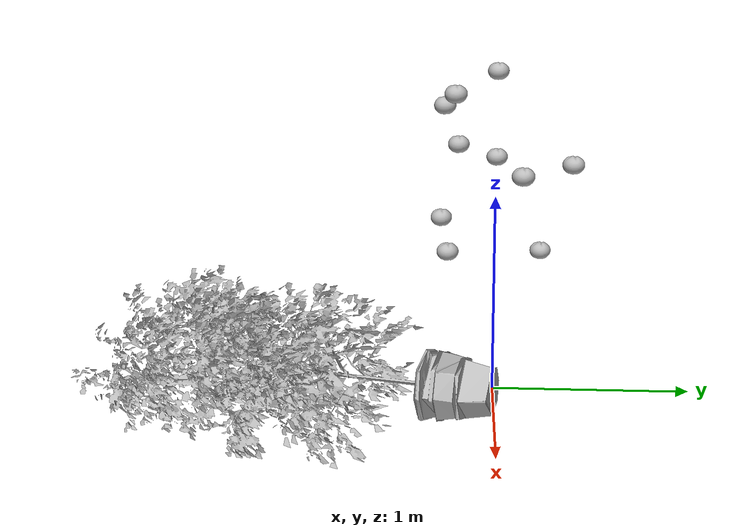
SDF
<?xml version="1.0"?>
<sdf version="1.6">
    <model name="plant_4">
      <static>false</static>
       <link name="plant_link">
        <pose>0 0 0 0 0 0</pose>
        <inertial>
          <!-- This mass is unrelated, inertias default to 1, they seem unrelated-->
          <mass>30</mass>
        </inertial>
         <visual name="visual">
          <pose>0 0 0 1.57 0 -0.277507351</pose>
          <geometry>
            <mesh><uri>model://plant/meshes/plant.obj</uri></mesh>
          </geometry>
        </visual>
        <collision name="collision">
          <pose>0 0 0.125 0 0 0</pose>
          <geometry>
            <box><size>0.3 0.3 0.25</size></box>
          </geometry>
        </collision>
      </link>
      <model name="tomato_0">
        <pose>-0.297 0.244 0.669 0 0 0</pose>
        <link name="t_link">
          <pose>-0 0 0 0 0 0</pose>
          <inertial>
            <!-- Try with different masses and figure out the force relation, currently it breaks at 98N -->
            <mass>0.1</mass>
          </inertial>
          <collision name="collision">
            <geometry>
              <sphere><radius>0.05</radius></sphere>
            </geometry>
          </collision>
          <visual name="visual">
            <geometry>
              <mesh><uri>model://tomato/meshes/tomato.obj</uri></mesh>
            </geometry>
          </visual>
          <!-- Nested model was also tried but there is some GUI bug that does not allow me to apply force to the link in case of nested model, see that approach in bak.sdf -->
        </link>
        <!-- analyse joint parameters once -->
        <joint name="t_joint" type="revolute">
          <parent>plant_link</parent>
          <!-- The parent link is world in the examples but gazebo crashes on detach in that case! -->
          <child>tomato_0::t_link</child>
          <axis>
            <xyz>0 0 1</xyz>
            <limit>
              <lower>0.0</lower>
              <upper>0.0</upper>
            </limit>
            <use_parent_model_frame>true</use_parent_model_frame>
          </axis>
          <physics>
            <ode>
              <erp>1</erp>
              <cfm>1</cfm>
            </ode>
          </physics>
          <sensor name="force_torque" type="force_torque">
            <!-- Can turn always_on to false if creating world plugin -->
            <always_on>true</always_on>
            <update_rate>1</update_rate>
            <plugin name="breakable_0" filename="libBreakableJointPlugin.so">
              <!-- Breaking force of 6 with mass 0.1 crashed Gazebo at launch -->
              <breaking_force_N>10</breaking_force_N>
            </plugin>
          </sensor>
        </joint>
      </model>
      <model name="tomato_1">
        <pose>0.073 0.375 1.175 0 0 0</pose>
        <link name="t_link">
          <pose>-0 0 0 0 0 0</pose>
          <inertial>
            <mass>0.1</mass>
          </inertial>
          <collision name="collision">
            <geometry>
              <sphere><radius>0.05</radius></sphere>
            </geometry>
          </collision>
          <visual name="visual">
            <geometry>
              <mesh><uri>model://tomato/meshes/tomato.obj</uri></mesh>
            </geometry>
          </visual>
        </link>
        <joint name="t_joint" type="revolute">
          <parent>plant_link</parent>
          <child>tomato_1::t_link</child>
          <axis>
            <xyz>0 0 1</xyz>
            <limit>
              <lower>0.0</lower>
              <upper>0.0</upper>
            </limit>
            <use_parent_model_frame>true</use_parent_model_frame>
          </axis>
          <physics>
            <ode>
              <erp>1</erp>
              <cfm>1</cfm>
            </ode>
          </physics>
        </joint>
      </model>
      <model name="tomato_2">
        <pose>0.196 -0.202 1.528 0 0 0</pose>
        <link name="t_link">
          <pose>-0 0 0 0 0 0</pose>
          <inertial>
            <mass>0.1</mass>
          </inertial>
          <collision name="collision">
            <geometry>
              <sphere><radius>0.05</radius></sphere>
            </geometry>
          </collision>
          <visual name="visual">
            <geometry>
              <mesh><uri>model://tomato/meshes/tomato.obj</uri></mesh>
            </geometry>
          </visual>
        </link>
        <joint name="t_joint" type="revolute">
          <parent>plant_link</parent>
          <child>tomato_2::t_link</child>
          <axis>
            <xyz>0 0 1</xyz>
            <limit>
              <lower>0.0</lower>
              <upper>0.0</upper>
            </limit>
            <use_parent_model_frame>true</use_parent_model_frame>
          </axis>
          <physics>
            <ode>
              <erp>1</erp>
              <cfm>1</cfm>
            </ode>
          </physics>
        </joint>
      </model>
      <model name="tomato_3">
        <pose>0.054 -0.237 0.732 0 0 0</pose>
        <link name="t_link">
          <pose>-0 0 0 0 0 0</pose>
          <inertial>
            <mass>0.1</mass>
          </inertial>
          <collision name="collision">
            <geometry>
              <sphere><radius>0.05</radius></sphere>
            </geometry>
          </collision>
          <visual name="visual">
            <geometry>
              <mesh><uri>model://tomato/meshes/tomato.obj</uri></mesh>
            </geometry>
          </visual>
        </link>
        <joint name="t_joint" type="revolute">
          <parent>plant_link</parent>
          <child>tomato_3::t_link</child>
          <axis>
            <xyz>0 0 1</xyz>
            <limit>
              <lower>0.0</lower>
              <upper>0.0</upper>
            </limit>
            <use_parent_model_frame>true</use_parent_model_frame>
          </axis>
          <physics>
            <ode>
              <erp>1</erp>
              <cfm>1</cfm>
            </ode>
          </physics>
        </joint>
      </model>
      <model name="tomato_4">
        <pose>-0.236 -0.275 0.851 0 0 0</pose>
        <link name="t_link">
          <pose>-0 0 0 0 0 0</pose>
          <inertial>
            <mass>0.1</mass>
          </inertial>
          <collision name="collision">
            <geometry>
              <sphere><radius>0.05</radius></sphere>
            </geometry>
          </collision>
          <visual name="visual">
            <geometry>
              <mesh><uri>model://tomato/meshes/tomato.obj</uri></mesh>
            </geometry>
          </visual>
        </link>
        <joint name="t_joint" type="revolute">
          <parent>plant_link</parent>
          <child>tomato_4::t_link</child>
          <axis>
            <xyz>0 0 1</xyz>
            <limit>
              <lower>0.0</lower>
              <upper>0.0</upper>
            </limit>
            <use_parent_model_frame>true</use_parent_model_frame>
          </axis>
          <physics>
            <ode>
              <erp>1</erp>
              <cfm>1</cfm>
            </ode>
          </physics>
        </joint>
      </model>
      <model name="tomato_5">
        <pose>-0.318 0.010 1.158 0 0 0</pose>
        <link name="t_link">
          <pose>-0 0 0 0 0 0</pose>
          <inertial>
            <mass>0.1</mass>
          </inertial>
          <collision name="collision">
            <geometry>
              <sphere><radius>0.05</radius></sphere>
            </geometry>
          </collision>
          <visual name="visual">
            <geometry>
              <mesh><uri>model://tomato/meshes/tomato.obj</uri></mesh>
            </geometry>
          </visual>
        </link>
        <joint name="t_joint" type="revolute">
          <parent>plant_link</parent>
          <child>tomato_5::t_link</child>
          <axis>
            <xyz>0 0 1</xyz>
            <limit>
              <lower>0.0</lower>
              <upper>0.0</upper>
            </limit>
            <use_parent_model_frame>true</use_parent_model_frame>
          </axis>
          <physics>
            <ode>
              <erp>1</erp>
              <cfm>1</cfm>
            </ode>
          </physics>
        </joint>
      </model>
      <model name="tomato_6">
        <pose>0.351 0.120 1.158 0 0 0</pose>
        <link name="t_link">
          <pose>-0 0 0 0 0 0</pose>
          <inertial>
            <mass>0.1</mass>
          </inertial>
          <collision name="collision">
            <geometry>
              <sphere><radius>0.05</radius></sphere>
            </geometry>
          </collision>
          <visual name="visual">
            <geometry>
              <mesh><uri>model://tomato/meshes/tomato.obj</uri></mesh>
            </geometry>
          </visual>
        </link>
        <joint name="t_joint" type="revolute">
          <parent>plant_link</parent>
          <child>tomato_6::t_link</child>
          <axis>
            <xyz>0 0 1</xyz>
            <limit>
              <lower>0.0</lower>
              <upper>0.0</upper>
            </limit>
            <use_parent_model_frame>true</use_parent_model_frame>
          </axis>
          <physics>
            <ode>
              <erp>1</erp>
              <cfm>1</cfm>
            </ode>
          </physics>
        </joint>
      </model>
      <model name="tomato_7">
        <pose>-0.039 -0.257 1.451 0 0 0</pose>
        <link name="t_link">
          <pose>-0 0 0 0 0 0</pose>
          <inertial>
            <mass>0.1</mass>
          </inertial>
          <collision name="collision">
            <geometry>
              <sphere><radius>0.05</radius></sphere>
            </geometry>
          </collision>
          <visual name="visual">
            <geometry>
              <mesh><uri>model://tomato/meshes/tomato.obj</uri></mesh>
            </geometry>
          </visual>
        </link>
        <joint name="t_joint" type="revolute">
          <parent>plant_link</parent>
          <child>tomato_7::t_link</child>
          <axis>
            <xyz>0 0 1</xyz>
            <limit>
              <lower>0.0</lower>
              <upper>0.0</upper>
            </limit>
            <use_parent_model_frame>true</use_parent_model_frame>
          </axis>
          <physics>
            <ode>
              <erp>1</erp>
              <cfm>1</cfm>
            </ode>
          </physics>
        </joint>
      </model>
      <model name="tomato_8">
        <pose>-0.236 -0.189 1.233 0 0 0</pose>
        <link name="t_link">
          <pose>-0 0 0 0 0 0</pose>
          <inertial>
            <mass>0.1</mass>
          </inertial>
          <collision name="collision">
            <geometry>
              <sphere><radius>0.05</radius></sphere>
            </geometry>
          </collision>
          <visual name="visual">
            <geometry>
              <mesh><uri>model://tomato/meshes/tomato.obj</uri></mesh>
            </geometry>
          </visual>
        </link>
        <joint name="t_joint" type="revolute">
          <parent>plant_link</parent>
          <child>tomato_8::t_link</child>
          <axis>
            <xyz>0 0 1</xyz>
            <limit>
              <lower>0.0</lower>
              <upper>0.0</upper>
            </limit>
            <use_parent_model_frame>true</use_parent_model_frame>
          </axis>
          <physics>
            <ode>
              <erp>1</erp>
              <cfm>1</cfm>
            </ode>
          </physics>
        </joint>
      </model>
      <model name="tomato_9">
        <pose>-0.318 0.010 1.599 0 0 0</pose>
        <link name="t_link">
          <pose>-0 0 0 0 0 0</pose>
          <inertial>
            <mass>0.1</mass>
          </inertial>
          <collision name="collision">
            <geometry>
              <sphere><radius>0.05</radius></sphere>
            </geometry>
          </collision>
          <visual name="visual">
            <geometry>
              <mesh><uri>model://tomato/meshes/tomato.obj</uri></mesh>
            </geometry>
          </visual>
        </link>
        <joint name="t_joint" type="revolute">
          <parent>plant_link</parent>
          <child>tomato_9::t_link</child>
          <axis>
            <xyz>0 0 1</xyz>
            <limit>
              <lower>0.0</lower>
              <upper>0.0</upper>
            </limit>
            <use_parent_model_frame>true</use_parent_model_frame>
          </axis>
          <physics>
            <ode>
              <erp>1</erp>
              <cfm>1</cfm>
            </ode>
          </physics>
        </joint>
      </model>
  </model>
</sdf>
